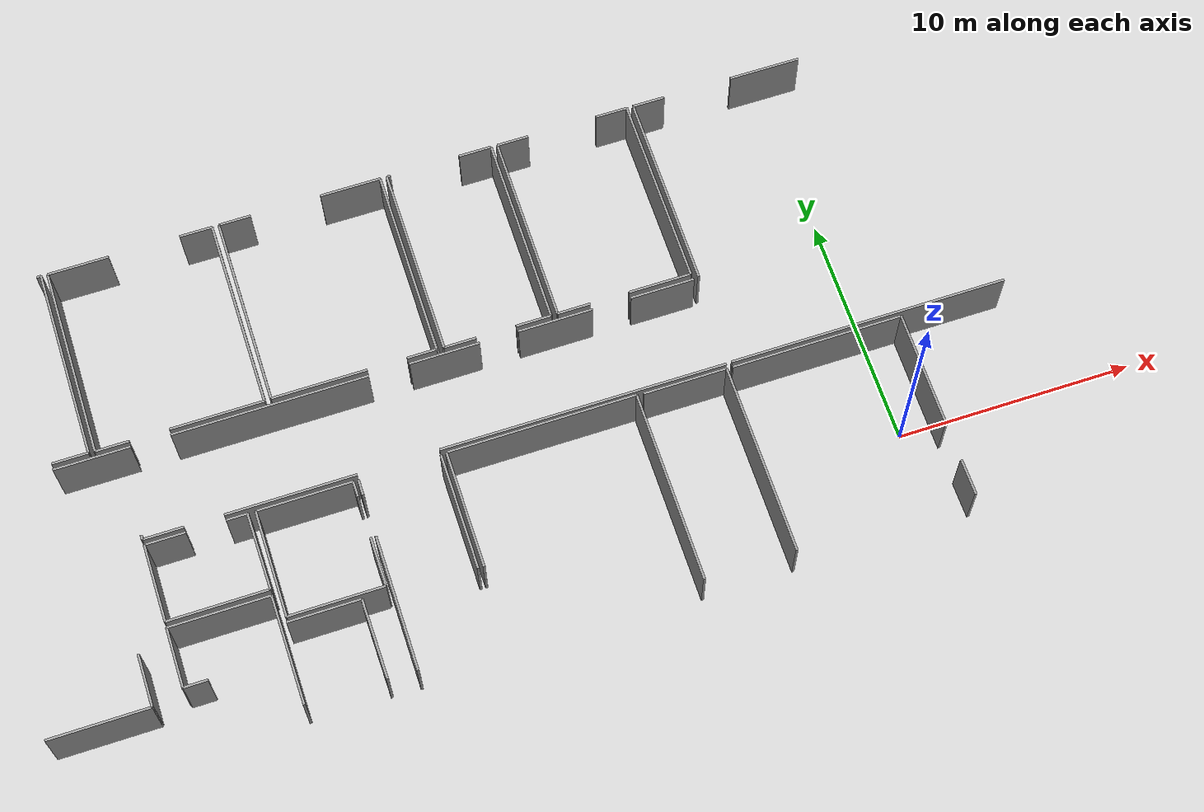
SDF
<sdf version="1.6">
 <world name="default">
  <model name="ground_plane">
   <static>1</static>
   <link name="link">
    <collision name="collision">
     <geometry><plane><normal>0 0 1</normal><size>100 100</size></plane></geometry>
     <surface><friction><ode><mu>100</mu><mu2>50</mu2></ode></friction></surface>
    </collision>
    <visual name="visual">
     <cast_shadows>0</cast_shadows>
     <geometry><plane><normal>0 0 1</normal><size>100 100</size></plane></geometry>
     <material>
      <script><uri>file://media/materials/scripts/gazebo.material</uri><name>Gazebo/Grey</name></script>
     </material>
    </visual>
   </link>
  </model>
  <model name="50041171">
   <static>1</static>
   <link name="Wall_0">
    <collision name="Wall_0_Collision">
     <geometry><box><size>2.7097945375 0.1 2.5</size></box></geometry>
     <pose>1.35489726875 0 1.25 0 0 0</pose>
    </collision>
    <visual name="Wall_0_Visual">
     <pose>1.35489726875 0 1.25 0 0 0</pose>
     <geometry><box><size>2.7097945375 0.1 2.5</size></box></geometry>
     <material>
      <script><uri>file://media/materials/scripts/gazebo.material</uri><name>Gazebo/Grey</name></script>
      <ambient>1 1 1 1</ambient>
     </material>
    </visual>
    <pose>59.5393120783 -8.49105346341 0 0 0 3.14159265359</pose>
   </link>
   <link name="Wall_1">
    <collision name="Wall_1_Collision">
     <geometry><box><size>3.16096149086 0.1 2.5</size></box></geometry>
     <pose>1.58048074543 0 1.25 0 0 0</pose>
    </collision>
    <visual name="Wall_1_Visual">
     <pose>1.58048074543 0 1.25 0 0 0</pose>
     <geometry><box><size>3.16096149086 0.1 2.5</size></box></geometry>
     <material>
      <script><uri>file://media/materials/scripts/gazebo.material</uri><name>Gazebo/Grey</name></script>
      <ambient>1 1 1 1</ambient>
     </material>
    </visual>
    <pose>55.1907684691 -8.49105346341 0 0 0 3.14159265359</pose>
   </link>
   <link name="Wall_2">
    <collision name="Wall_2_Collision">
     <geometry><box><size>2.95302354218 0.1 2.5</size></box></geometry>
     <pose>1.47651177109 0 1.25 0 0 0</pose>
    </collision>
    <visual name="Wall_2_Visual">
     <pose>1.47651177109 0 1.25 0 0 0</pose>
     <geometry><box><size>2.95302354218 0.1 2.5</size></box></geometry>
     <material>
      <script><uri>file://media/materials/scripts/gazebo.material</uri><name>Gazebo/Grey</name></script>
      <ambient>1 1 1 1</ambient>
     </material>
    </visual>
    <pose>50.3991824662 -8.49105346341 0 0 0 3.14159265359</pose>
   </link>
   <link name="Wall_3">
    <collision name="Wall_3_Collision">
     <geometry><box><size>8.16822916336 0.1 2.5</size></box></geometry>
     <pose>4.08411458168 0 1.25 0 0 0</pose>
    </collision>
    <visual name="Wall_3_Visual">
     <pose>4.08411458168 0 1.25 0 0 0</pose>
     <geometry><box><size>8.16822916336 0.1 2.5</size></box></geometry>
     <material>
      <script><uri>file://media/materials/scripts/gazebo.material</uri><name>Gazebo/Grey</name></script>
      <ambient>1 1 1 1</ambient>
     </material>
    </visual>
    <pose>45.7487606873 -8.49105346341 0 0 0 3.14159265359</pose>
   </link>
   <link name="Wall_4">
    <collision name="Wall_4_Collision">
     <geometry><box><size>3.16096149086 0.1 2.5</size></box></geometry>
     <pose>1.58048074543 0 1.25 0 0 0</pose>
    </collision>
    <visual name="Wall_4_Visual">
     <pose>1.58048074543 0 1.25 0 0 0</pose>
     <geometry><box><size>3.16096149086 0.1 2.5</size></box></geometry>
     <material>
      <script><uri>file://media/materials/scripts/gazebo.material</uri><name>Gazebo/Grey</name></script>
      <ambient>1 1 1 1</ambient>
     </material>
    </visual>
    <pose>35.9584124103 -8.49105346341 0 0 0 3.14159265359</pose>
   </link>
   <link name="Wall_13">
    <collision name="Wall_13_Collision">
     <geometry><box><size>0.196005001682 0.1 2.5</size></box></geometry>
     <pose>0.098002500841 0 1.25 0 0 0</pose>
    </collision>
    <visual name="Wall_13_Visual">
     <pose>0.098002500841 0 1.25 0 0 0</pose>
     <geometry><box><size>0.196005001682 0.1 2.5</size></box></geometry>
     <material>
      <script><uri>file://media/materials/scripts/gazebo.material</uri><name>Gazebo/Grey</name></script>
      <ambient>1 1 1 1</ambient>
     </material>
    </visual>
    <pose>35.4451687433 -12.2558982399 0 0 0 -1.57079632679</pose>
   </link>
   <link name="Wall_14">
    <collision name="Wall_14_Collision">
     <geometry><box><size>1.67112036408 0.1 2.5</size></box></geometry>
     <pose>0.835560182041 0 1.25 0 0 0</pose>
    </collision>
    <visual name="Wall_14_Visual">
     <pose>0.835560182041 0 1.25 0 0 0</pose>
     <geometry><box><size>1.67112036408 0.1 2.5</size></box></geometry>
     <material>
      <script><uri>file://media/materials/scripts/gazebo.material</uri><name>Gazebo/Grey</name></script>
      <ambient>1 1 1 1</ambient>
     </material>
    </visual>
    <pose>35.4451687433 -12.4519032416 0 0 0 0.0</pose>
   </link>
   <link name="Wall_15">
    <collision name="Wall_15_Collision">
     <geometry><box><size>5.40740223552 0.1 2.5</size></box></geometry>
     <pose>2.70370111776 0 1.25 0 0 0</pose>
    </collision>
    <visual name="Wall_15_Visual">
     <pose>2.70370111776 0 1.25 0 0 0</pose>
     <geometry><box><size>5.40740223552 0.1 2.5</size></box></geometry>
     <material>
      <script><uri>file://media/materials/scripts/gazebo.material</uri><name>Gazebo/Grey</name></script>
      <ambient>1 1 1 1</ambient>
     </material>
    </visual>
    <pose>38.7348537262 -12.4519032416 0 0 0 0.0</pose>
   </link>
   <link name="Wall_16">
    <collision name="Wall_16_Collision">
     <geometry><box><size>12.0161724886 0.1 2.5</size></box></geometry>
     <pose>6.00808624431 0 1.25 0 0 0</pose>
    </collision>
    <visual name="Wall_16_Visual">
     <pose>6.00808624431 0 1.25 0 0 0</pose>
     <geometry><box><size>12.0161724886 0.1 2.5</size></box></geometry>
     <material>
      <script><uri>file://media/materials/scripts/gazebo.material</uri><name>Gazebo/Grey</name></script>
      <ambient>1 1 1 1</ambient>
     </material>
    </visual>
    <pose>47.5232152945 -12.4519032416 0 0 0 -0.00354971833229</pose>
   </link>
   <link name="Wall_34">
    <collision name="Wall_34_Collision">
     <geometry><box><size>1.50126628879 0.1 2.5</size></box></geometry>
     <pose>0.750633144395 0 1.25 0 0 0</pose>
    </collision>
    <visual name="Wall_34_Visual">
     <pose>0.750633144395 0 1.25 0 0 0</pose>
     <geometry><box><size>1.50126628879 0.1 2.5</size></box></geometry>
     <material>
      <script><uri>file://media/materials/scripts/gazebo.material</uri><name>Gazebo/Grey</name></script>
      <ambient>1 1 1 1</ambient>
     </material>
    </visual>
    <pose>34.3062070366 -8.22852862955 0 0 0 3.14159265359</pose>
   </link>
   <link name="Wall_38">
    <collision name="Wall_38_Collision">
     <geometry><box><size>0.190927151898 0.1 2.5</size></box></geometry>
     <pose>0.0954635759488 0 1.25 0 0 0</pose>
    </collision>
    <visual name="Wall_38_Visual">
     <pose>0.0954635759488 0 1.25 0 0 0</pose>
     <geometry><box><size>0.190927151898 0.1 2.5</size></box></geometry>
     <material>
      <script><uri>file://media/materials/scripts/gazebo.material</uri><name>Gazebo/Grey</name></script>
      <ambient>1 1 1 1</ambient>
     </material>
    </visual>
    <pose>34.0990307654 -0.00533174227373 0 0 0 0.0</pose>
   </link>
   <link name="Wall_39">
    <collision name="Wall_39_Collision">
     <geometry><box><size>8.22321294147 0.1 2.5</size></box></geometry>
     <pose>4.11160647074 0 1.25 0 0 0</pose>
    </collision>
    <visual name="Wall_39_Visual">
     <pose>4.11160647074 0 1.25 0 0 0</pose>
     <geometry><box><size>8.22321294147 0.1 2.5</size></box></geometry>
     <material>
      <script><uri>file://media/materials/scripts/gazebo.material</uri><name>Gazebo/Grey</name></script>
      <ambient>1 1 1 1</ambient>
     </material>
    </visual>
    <pose>34.2899579173 -0.00533174227373 0 0 0 -1.56882031936</pose>
   </link>
   <link name="Wall_40">
    <collision name="Wall_40_Collision">
     <geometry><box><size>3.90270839813 0.1 2.5</size></box></geometry>
     <pose>1.95135419906 0 1.25 0 0 0</pose>
    </collision>
    <visual name="Wall_40_Visual">
     <pose>1.95135419906 0 1.25 0 0 0</pose>
     <geometry><box><size>3.90270839813 0.1 2.5</size></box></geometry>
     <material>
      <script><uri>file://media/materials/scripts/gazebo.material</uri><name>Gazebo/Grey</name></script>
      <ambient>1 1 1 1</ambient>
     </material>
    </visual>
    <pose>41.4958076003 -8.24782445873 0 0 0 3.14159265359</pose>
   </link>
   <link name="Wall_41">
    <collision name="Wall_41_Collision">
     <geometry><box><size>1.40224821799 0.1 2.5</size></box></geometry>
     <pose>0.701124108996 0 1.25 0 0 0</pose>
    </collision>
    <visual name="Wall_41_Visual">
     <pose>0.701124108996 0 1.25 0 0 0</pose>
     <geometry><box><size>1.40224821799 0.1 2.5</size></box></geometry>
     <material>
      <script><uri>file://media/materials/scripts/gazebo.material</uri><name>Gazebo/Grey</name></script>
      <ambient>1 1 1 1</ambient>
     </material>
    </visual>
    <pose>35.9622207976 -8.24782445873 0 0 0 3.14159265359</pose>
   </link>
   <link name="Wall_42">
    <collision name="Wall_42_Collision">
     <geometry><box><size>8.22929030702 0.1 2.5</size></box></geometry>
     <pose>4.11464515351 0 1.25 0 0 0</pose>
    </collision>
    <visual name="Wall_42_Visual">
     <pose>4.11464515351 0 1.25 0 0 0</pose>
     <geometry><box><size>8.22929030702 0.1 2.5</size></box></geometry>
     <material>
      <script><uri>file://media/materials/scripts/gazebo.material</uri><name>Gazebo/Grey</name></script>
      <ambient>1 1 1 1</ambient>
     </material>
    </visual>
    <pose>34.5599725796 -8.24782445873 0 0 0 1.57079632679</pose>
   </link>
   <link name="Wall_43">
    <collision name="Wall_43_Collision">
     <geometry><box><size>2.55707820523 0.1 2.5</size></box></geometry>
     <pose>1.27853910262 0 1.25 0 0 0</pose>
    </collision>
    <visual name="Wall_43_Visual">
     <pose>1.27853910262 0 1.25 0 0 0</pose>
     <geometry><box><size>2.55707820523 0.1 2.5</size></box></geometry>
     <material>
      <script><uri>file://media/materials/scripts/gazebo.material</uri><name>Gazebo/Grey</name></script>
      <ambient>1 1 1 1</ambient>
     </material>
    </visual>
    <pose>34.5599725796 -0.0185341517135 0 0 0 0.0</pose>
   </link>
   <link name="Wall_44">
    <collision name="Wall_44_Collision">
     <geometry><box><size>1.37762064654 0.1 2.5</size></box></geometry>
     <pose>0.688810323269 0 1.25 0 0 0</pose>
    </collision>
    <visual name="Wall_44_Visual">
     <pose>0.688810323269 0 1.25 0 0 0</pose>
     <geometry><box><size>1.37762064654 0.1 2.5</size></box></geometry>
     <material>
      <script><uri>file://media/materials/scripts/gazebo.material</uri><name>Gazebo/Grey</name></script>
      <ambient>1 1 1 1</ambient>
     </material>
    </visual>
    <pose>40.1080312542 -0.0185341517135 0 0 0 0.0</pose>
   </link>
   <link name="Wall_45">
    <collision name="Wall_45_Collision">
     <geometry><box><size>8.22929657355 0.1 2.5</size></box></geometry>
     <pose>4.11464828677 0 1.25 0 0 0</pose>
    </collision>
    <visual name="Wall_45_Visual">
     <pose>4.11464828677 0 1.25 0 0 0</pose>
     <geometry><box><size>8.22929657355 0.1 2.5</size></box></geometry>
     <material>
      <script><uri>file://media/materials/scripts/gazebo.material</uri><name>Gazebo/Grey</name></script>
      <ambient>1 1 1 1</ambient>
     </material>
    </visual>
    <pose>41.4856519007 -0.0185341517135 0 0 0 -1.56956223564</pose>
   </link>
   <link name="Wall_46">
    <collision name="Wall_46_Collision">
     <geometry><box><size>1.24381930472 0.1 2.5</size></box></geometry>
     <pose>0.621909652358 0 1.25 0 0 0</pose>
    </collision>
    <visual name="Wall_46_Visual">
     <pose>0.621909652358 0 1.25 0 0 0</pose>
     <geometry><box><size>1.24381930472 0.1 2.5</size></box></geometry>
     <material>
      <script><uri>file://media/materials/scripts/gazebo.material</uri><name>Gazebo/Grey</name></script>
      <ambient>1 1 1 1</ambient>
     </material>
    </visual>
    <pose>48.6746177331 -8.22395856475 0 0 0 3.14159265359</pose>
   </link>
   <link name="Wall_47">
    <collision name="Wall_47_Collision">
     <geometry><box><size>3.99817197408 0.1 2.5</size></box></geometry>
     <pose>1.99908598704 0 1.25 0 0 0</pose>
    </collision>
    <visual name="Wall_47_Visual">
     <pose>1.99908598704 0 1.25 0 0 0</pose>
     <geometry><box><size>3.99817197408 0.1 2.5</size></box></geometry>
     <material>
      <script><uri>file://media/materials/scripts/gazebo.material</uri><name>Gazebo/Grey</name></script>
      <ambient>1 1 1 1</ambient>
     </material>
    </visual>
    <pose>45.7698337639 -8.22395856475 0 0 0 3.14159265359</pose>
   </link>
   <link name="Wall_48">
    <collision name="Wall_48_Collision">
     <geometry><box><size>8.21773819876 0.1 2.5</size></box></geometry>
     <pose>4.10886909938 0 1.25 0 0 0</pose>
    </collision>
    <visual name="Wall_48_Visual">
     <pose>4.10886909938 0 1.25 0 0 0</pose>
     <geometry><box><size>8.21773819876 0.1 2.5</size></box></geometry>
     <material>
      <script><uri>file://media/materials/scripts/gazebo.material</uri><name>Gazebo/Grey</name></script>
      <ambient>1 1 1 1</ambient>
     </material>
    </visual>
    <pose>41.7716617898 -8.22395856475 0 0 0 1.57079632679</pose>
   </link>
   <link name="Wall_49">
    <collision name="Wall_49_Collision">
     <geometry><box><size>1.35654756993 0.1 2.5</size></box></geometry>
     <pose>0.678273784966 0 1.25 0 0 0</pose>
    </collision>
    <visual name="Wall_49_Visual">
     <pose>0.678273784966 0 1.25 0 0 0</pose>
     <geometry><box><size>1.35654756993 0.1 2.5</size></box></geometry>
     <material>
      <script><uri>file://media/materials/scripts/gazebo.material</uri><name>Gazebo/Grey</name></script>
      <ambient>1 1 1 1</ambient>
     </material>
    </visual>
    <pose>41.7716617898 -0.00622036598602 0 0 0 0.0</pose>
   </link>
   <link name="Wall_50">
    <collision name="Wall_50_Collision">
     <geometry><box><size>2.5814518842 0.1 2.5</size></box></geometry>
     <pose>1.2907259421 0 1.25 0 0 0</pose>
    </collision>
    <visual name="Wall_50_Visual">
     <pose>1.2907259421 0 1.25 0 0 0</pose>
     <geometry><box><size>2.5814518842 0.1 2.5</size></box></geometry>
     <material>
      <script><uri>file://media/materials/scripts/gazebo.material</uri><name>Gazebo/Grey</name></script>
      <ambient>1 1 1 1</ambient>
     </material>
    </visual>
    <pose>46.1072568821 -0.00622036598602 0 0 0 0.0</pose>
   </link>
   <link name="Wall_51">
    <collision name="Wall_51_Collision">
     <geometry><box><size>8.21775027976 0.1 2.5</size></box></geometry>
     <pose>4.10887513988 0 1.25 0 0 0</pose>
    </collision>
    <visual name="Wall_51_Visual">
     <pose>4.10887513988 0 1.25 0 0 0</pose>
     <geometry><box><size>8.21775027976 0.1 2.5</size></box></geometry>
     <material>
      <script><uri>file://media/materials/scripts/gazebo.material</uri><name>Gazebo/Grey</name></script>
      <ambient>1 1 1 1</ambient>
     </material>
    </visual>
    <pose>48.6887087663 -0.00622036598602 0 0 0 -1.57251103454</pose>
   </link>
   <link name="Wall_52">
    <collision name="Wall_52_Collision">
     <geometry><box><size>1.48984112677 0.1 2.5</size></box></geometry>
     <pose>0.744920563387 0 1.25 0 0 0</pose>
    </collision>
    <visual name="Wall_52_Visual">
     <pose>0.744920563387 0 1.25 0 0 0</pose>
     <geometry><box><size>1.48984112677 0.1 2.5</size></box></geometry>
     <material>
      <script><uri>file://media/materials/scripts/gazebo.material</uri><name>Gazebo/Grey</name></script>
      <ambient>1 1 1 1</ambient>
     </material>
    </visual>
    <pose>53.5074612655 -8.24071546903 0 0 0 3.14159265359</pose>
   </link>
   <link name="Wall_53">
    <collision name="Wall_53_Collision">
     <geometry><box><size>1.36302182841 0.1 2.5</size></box></geometry>
     <pose>0.681510914203 0 1.25 0 0 0</pose>
    </collision>
    <visual name="Wall_53_Visual">
     <pose>0.681510914203 0 1.25 0 0 0</pose>
     <geometry><box><size>1.36302182841 0.1 2.5</size></box></geometry>
     <material>
      <script><uri>file://media/materials/scripts/gazebo.material</uri><name>Gazebo/Grey</name></script>
      <ambient>1 1 1 1</ambient>
     </material>
    </visual>
    <pose>50.3364710213 -8.24071546903 0 0 0 3.14159265359</pose>
   </link>
   <link name="Wall_54">
    <collision name="Wall_54_Collision">
     <geometry><box><size>8.22890946829 0.1 2.5</size></box></geometry>
     <pose>4.11445473414 0 1.25 0 0 0</pose>
    </collision>
    <visual name="Wall_54_Visual">
     <pose>4.11445473414 0 1.25 0 0 0</pose>
     <geometry><box><size>8.22890946829 0.1 2.5</size></box></geometry>
     <material>
      <script><uri>file://media/materials/scripts/gazebo.material</uri><name>Gazebo/Grey</name></script>
      <ambient>1 1 1 1</ambient>
     </material>
    </visual>
    <pose>48.9734491929 -8.24071546903 0 0 0 1.57079632679</pose>
   </link>
   <link name="Wall_55">
    <collision name="Wall_55_Collision">
     <geometry><box><size>0.163125924327 0.1 2.5</size></box></geometry>
     <pose>0.0815629621637 0 1.25 0 0 0</pose>
    </collision>
    <visual name="Wall_55_Visual">
     <pose>0.0815629621637 0 1.25 0 0 0</pose>
     <geometry><box><size>0.163125924327 0.1 2.5</size></box></geometry>
     <material>
      <script><uri>file://media/materials/scripts/gazebo.material</uri><name>Gazebo/Grey</name></script>
      <ambient>1 1 1 1</ambient>
     </material>
    </visual>
    <pose>48.9734491929 -0.011806000749 0 0 0 0.0</pose>
   </link>
   <link name="Wall_56">
    <collision name="Wall_56_Collision">
     <geometry><box><size>1.40745301402 0.1 2.5</size></box></geometry>
     <pose>0.703726507011 0 1.25 0 0 0</pose>
    </collision>
    <visual name="Wall_56_Visual">
     <pose>0.703726507011 0 1.25 0 0 0</pose>
     <geometry><box><size>1.40745301402 0.1 2.5</size></box></geometry>
     <material>
      <script><uri>file://media/materials/scripts/gazebo.material</uri><name>Gazebo/Grey</name></script>
      <ambient>1 1 1 1</ambient>
     </material>
    </visual>
    <pose>52.1031819076 -0.011806000749 0 0 0 0.0</pose>
   </link>
   <link name="Wall_57">
    <collision name="Wall_57_Collision">
     <geometry><box><size>8.22891008028 0.1 2.5</size></box></geometry>
     <pose>4.11445504014 0 1.25 0 0 0</pose>
    </collision>
    <visual name="Wall_57_Visual">
     <pose>4.11445504014 0 1.25 0 0 0</pose>
     <geometry><box><size>8.22891008028 0.1 2.5</size></box></geometry>
     <material>
      <script><uri>file://media/materials/scripts/gazebo.material</uri><name>Gazebo/Grey</name></script>
      <ambient>1 1 1 1</ambient>
     </material>
    </visual>
    <pose>53.5106349216 -0.011806000749 0 0 0 -1.57118199831</pose>
   </link>
   <link name="Wall_58">
    <collision name="Wall_58_Collision">
     <geometry><box><size>2.65888909341 0.1 2.5</size></box></geometry>
     <pose>1.32944454671 0 1.25 0 0 0</pose>
    </collision>
    <visual name="Wall_58_Visual">
     <pose>1.32944454671 0 1.25 0 0 0</pose>
     <geometry><box><size>2.65888909341 0.1 2.5</size></box></geometry>
     <material>
      <script><uri>file://media/materials/scripts/gazebo.material</uri><name>Gazebo/Grey</name></script>
      <ambient>1 1 1 1</ambient>
     </material>
    </visual>
    <pose>59.5005934737 -8.23233701689 0 0 0 3.14159265359</pose>
   </link>
   <link name="Wall_59">
    <collision name="Wall_59_Collision">
     <geometry><box><size>1.4008518093 0.1 2.5</size></box></geometry>
     <pose>0.700425904651 0 1.25 0 0 0</pose>
    </collision>
    <visual name="Wall_59_Visual">
     <pose>0.700425904651 0 1.25 0 0 0</pose>
     <geometry><box><size>1.4008518093 0.1 2.5</size></box></geometry>
     <material>
      <script><uri>file://media/materials/scripts/gazebo.material</uri><name>Gazebo/Grey</name></script>
      <ambient>1 1 1 1</ambient>
     </material>
    </visual>
    <pose>55.181882232 -8.23233701689 0 0 0 3.14159265359</pose>
   </link>
   <link name="Wall_60">
    <collision name="Wall_60_Collision">
     <geometry><box><size>8.21342202644 0.1 2.5</size></box></geometry>
     <pose>4.10671101322 0 1.25 0 0 0</pose>
    </collision>
    <visual name="Wall_60_Visual">
     <pose>4.10671101322 0 1.25 0 0 0</pose>
     <geometry><box><size>8.21342202644 0.1 2.5</size></box></geometry>
     <material>
      <script><uri>file://media/materials/scripts/gazebo.material</uri><name>Gazebo/Grey</name></script>
      <ambient>1 1 1 1</ambient>
     </material>
    </visual>
    <pose>53.7810304227 -8.23233701689 0 0 0 1.57079632679</pose>
   </link>
   <link name="Wall_61">
    <collision name="Wall_61_Collision">
     <geometry><box><size>1.34537630041 0.1 2.5</size></box></geometry>
     <pose>0.672688150203 0 1.25 0 0 0</pose>
    </collision>
    <visual name="Wall_61_Visual">
     <pose>0.672688150203 0 1.25 0 0 0</pose>
     <geometry><box><size>1.34537630041 0.1 2.5</size></box></geometry>
     <material>
      <script><uri>file://media/materials/scripts/gazebo.material</uri><name>Gazebo/Grey</name></script>
      <ambient>1 1 1 1</ambient>
     </material>
    </visual>
    <pose>53.7810304227 -0.0189149904473 0 0 0 0.0</pose>
   </link>
   <link name="Wall_62">
    <collision name="Wall_62_Collision">
     <geometry><box><size>1.36962303313 0.1 2.5</size></box></geometry>
     <pose>0.684811516563 0 1.25 0 0 0</pose>
    </collision>
    <visual name="Wall_62_Visual">
     <pose>0.684811516563 0 1.25 0 0 0</pose>
     <geometry><box><size>1.36962303313 0.1 2.5</size></box></geometry>
     <material>
      <script><uri>file://media/materials/scripts/gazebo.material</uri><name>Gazebo/Grey</name></script>
      <ambient>1 1 1 1</ambient>
     </material>
    </visual>
    <pose>58.1116746114 -0.0189149904473 0 0 0 0.0</pose>
   </link>
   <link name="Wall_63">
    <collision name="Wall_63_Collision">
     <geometry><box><size>8.2134446923 0.1 2.5</size></box></geometry>
     <pose>4.10672234615 0 1.25 0 0 0</pose>
    </collision>
    <visual name="Wall_63_Visual">
     <pose>4.10672234615 0 1.25 0 0 0</pose>
     <geometry><box><size>8.2134446923 0.1 2.5</size></box></geometry>
     <material>
      <script><uri>file://media/materials/scripts/gazebo.material</uri><name>Gazebo/Grey</name></script>
      <ambient>1 1 1 1</ambient>
     </material>
    </visual>
    <pose>59.4812976445 -0.0189149904473 0 0 0 -1.56844702663</pose>
   </link>
   <link name="Wall_66">
    <collision name="Wall_66_Collision">
     <geometry><box><size>3.04048950472 0.1 2.5</size></box></geometry>
     <pose>1.52024475236 0 1.25 0 0 0</pose>
    </collision>
    <visual name="Wall_66_Visual">
     <pose>1.52024475236 0 1.25 0 0 0</pose>
     <geometry><box><size>3.04048950472 0.1 2.5</size></box></geometry>
     <material>
      <script><uri>file://media/materials/scripts/gazebo.material</uri><name>Gazebo/Grey</name></script>
      <ambient>1 1 1 1</ambient>
     </material>
    </visual>
    <pose>67.1485969266 -0.0185341517135 0 0 0 3.14159265359</pose>
   </link>
   <link name="Wall_67">
    <collision name="Wall_67_Collision">
     <geometry><box><size>1.37203501177 0.1 2.5</size></box></geometry>
     <pose>0.686017505887 0 1.25 0 0 0</pose>
    </collision>
    <visual name="Wall_67_Visual">
     <pose>0.686017505887 0 1.25 0 0 0</pose>
     <geometry><box><size>1.37203501177 0.1 2.5</size></box></geometry>
     <material>
      <script><uri>file://media/materials/scripts/gazebo.material</uri><name>Gazebo/Grey</name></script>
      <ambient>1 1 1 1</ambient>
     </material>
    </visual>
    <pose>61.1389617067 -0.0185341517135 0 0 0 3.14159265359</pose>
   </link>
   <link name="Wall_68">
    <collision name="Wall_68_Collision">
     <geometry><box><size>8.43075399722 0.1 2.5</size></box></geometry>
     <pose>4.21537699861 0 1.25 0 0 0</pose>
    </collision>
    <visual name="Wall_68_Visual">
     <pose>4.21537699861 0 1.25 0 0 0</pose>
     <geometry><box><size>8.43075399722 0.1 2.5</size></box></geometry>
     <material>
      <script><uri>file://media/materials/scripts/gazebo.material</uri><name>Gazebo/Grey</name></script>
      <ambient>1 1 1 1</ambient>
     </material>
    </visual>
    <pose>59.7669266949 -0.0185341517135 0 0 0 -1.57079632679</pose>
   </link>
   <link name="Wall_69">
    <collision name="Wall_69_Collision">
     <geometry><box><size>11.7745249236 0.1 2.5</size></box></geometry>
     <pose>5.88726246182 0 1.25 0 0 0</pose>
    </collision>
    <visual name="Wall_69_Visual">
     <pose>5.88726246182 0 1.25 0 0 0</pose>
     <geometry><box><size>11.7745249236 0.1 2.5</size></box></geometry>
     <material>
      <script><uri>file://media/materials/scripts/gazebo.material</uri><name>Gazebo/Grey</name></script>
      <ambient>1 1 1 1</ambient>
     </material>
    </visual>
    <pose>59.7669266949 -12.4736110494 0 0 0 -0.00107814344977</pose>
   </link>
   <link name="Wall_70">
    <collision name="Wall_70_Collision">
     <geometry><box><size>4.16866078059 0.1 2.5</size></box></geometry>
     <pose>2.0843303903 0 1.25 0 0 0</pose>
    </collision>
    <visual name="Wall_70_Visual">
     <pose>2.0843303903 0 1.25 0 0 0</pose>
     <geometry><box><size>4.16866078059 0.1 2.5</size></box></geometry>
     <material>
      <script><uri>file://media/materials/scripts/gazebo.material</uri><name>Gazebo/Grey</name></script>
      <ambient>1 1 1 1</ambient>
     </material>
    </visual>
    <pose>34.1646619739 -19.1455248275 0 0 0 3.14159265359</pose>
   </link>
   <link name="Wall_72">
    <collision name="Wall_72_Collision">
     <geometry><box><size>2.20277126944 0.1 2.5</size></box></geometry>
     <pose>1.10138563472 0 1.25 0 0 0</pose>
    </collision>
    <visual name="Wall_72_Visual">
     <pose>1.10138563472 0 1.25 0 0 0</pose>
     <geometry><box><size>2.20277126944 0.1 2.5</size></box></geometry>
     <material>
      <script><uri>file://media/materials/scripts/gazebo.material</uri><name>Gazebo/Grey</name></script>
      <ambient>1 1 1 1</ambient>
     </material>
    </visual>
    <pose>34.1642811352 -16.942753591 0 0 0 -1.57062343606</pose>
   </link>
   <link name="Wall_73">
    <collision name="Wall_73_Collision">
     <geometry><box><size>4.19011469593 0.1 2.5</size></box></geometry>
     <pose>2.09505734797 0 1.25 0 0 0</pose>
    </collision>
    <visual name="Wall_73_Visual">
     <pose>2.09505734797 0 1.25 0 0 0</pose>
     <geometry><box><size>4.19011469593 0.1 2.5</size></box></geometry>
     <material>
      <script><uri>file://media/materials/scripts/gazebo.material</uri><name>Gazebo/Grey</name></script>
      <ambient>1 1 1 1</ambient>
     </material>
    </visual>
    <pose>39.6515325585 -15.9949729287 0 0 0 3.14159265359</pose>
   </link>
   <link name="Wall_74">
    <collision name="Wall_74_Collision">
     <geometry><box><size>3.30542631723 0.1 2.5</size></box></geometry>
     <pose>1.65271315861 0 1.25 0 0 0</pose>
    </collision>
    <visual name="Wall_74_Visual">
     <pose>1.65271315861 0 1.25 0 0 0</pose>
     <geometry><box><size>3.30542631723 0.1 2.5</size></box></geometry>
     <material>
      <script><uri>file://media/materials/scripts/gazebo.material</uri><name>Gazebo/Grey</name></script>
      <ambient>1 1 1 1</ambient>
     </material>
    </visual>
    <pose>35.4614178626 -15.9949729287 0 0 0 1.57079632679</pose>
   </link>
   <link name="Wall_75">
    <collision name="Wall_75_Collision">
     <geometry><box><size>1.66934311666 0.1 2.5</size></box></geometry>
     <pose>0.834671558329 0 1.25 0 0 0</pose>
    </collision>
    <visual name="Wall_75_Visual">
     <pose>0.834671558329 0 1.25 0 0 0</pose>
     <geometry><box><size>1.66934311666 0.1 2.5</size></box></geometry>
     <material>
      <script><uri>file://media/materials/scripts/gazebo.material</uri><name>Gazebo/Grey</name></script>
      <ambient>1 1 1 1</ambient>
     </material>
    </visual>
    <pose>35.4614178626 -12.6895466115 0 0 0 0.0</pose>
   </link>
   <link name="Wall_76">
    <collision name="Wall_76_Collision">
     <geometry><box><size>0.870978184288 0.1 2.5</size></box></geometry>
     <pose>0.435489092144 0 1.25 0 0 0</pose>
    </collision>
    <visual name="Wall_76_Visual">
     <pose>0.435489092144 0 1.25 0 0 0</pose>
     <geometry><box><size>0.870978184288 0.1 2.5</size></box></geometry>
     <material>
      <script><uri>file://media/materials/scripts/gazebo.material</uri><name>Gazebo/Grey</name></script>
      <ambient>1 1 1 1</ambient>
     </material>
    </visual>
    <pose>38.7420896621 -12.6895466115 0 0 0 0.0</pose>
   </link>
   <link name="Wall_77">
    <collision name="Wall_77_Collision">
     <geometry><box><size>3.30565011347 0.1 2.5</size></box></geometry>
     <pose>1.65282505674 0 1.25 0 0 0</pose>
    </collision>
    <visual name="Wall_77_Visual">
     <pose>1.65282505674 0 1.25 0 0 0</pose>
     <geometry><box><size>3.30565011347 0.1 2.5</size></box></geometry>
     <material>
      <script><uri>file://media/materials/scripts/gazebo.material</uri><name>Gazebo/Grey</name></script>
      <ambient>1 1 1 1</ambient>
     </material>
    </visual>
    <pose>39.6130678464 -12.6895466115 0 0 0 -1.55916001356</pose>
   </link>
   <link name="Wall_132">
    <collision name="Wall_132_Collision">
     <geometry><box><size>0.992592686627 0.1 2.5</size></box></geometry>
     <pose>0.496296343313 0 1.25 0 0 0</pose>
    </collision>
    <visual name="Wall_132_Visual">
     <pose>0.496296343313 0 1.25 0 0 0</pose>
     <geometry><box><size>0.992592686627 0.1 2.5</size></box></geometry>
     <material>
      <script><uri>file://media/materials/scripts/gazebo.material</uri><name>Gazebo/Grey</name></script>
      <ambient>1 1 1 1</ambient>
     </material>
    </visual>
    <pose>36.4467746133 -18.7682405885 0 0 0 3.14159265359</pose>
   </link>
   <link name="Wall_133">
    <collision name="Wall_133_Collision">
     <geometry><box><size>2.52039074054 0.1 2.5</size></box></geometry>
     <pose>1.26019537027 0 1.25 0 0 0</pose>
    </collision>
    <visual name="Wall_133_Visual">
     <pose>1.26019537027 0 1.25 0 0 0</pose>
     <geometry><box><size>2.52039074054 0.1 2.5</size></box></geometry>
     <material>
      <script><uri>file://media/materials/scripts/gazebo.material</uri><name>Gazebo/Grey</name></script>
      <ambient>1 1 1 1</ambient>
     </material>
    </visual>
    <pose>35.4541819267 -18.7682405885 0 0 0 1.57079632679</pose>
   </link>
   <link name="Wall_134">
    <collision name="Wall_134_Collision">
     <geometry><box><size>4.1661218557 0.1 2.5</size></box></geometry>
     <pose>2.08306092785 0 1.25 0 0 0</pose>
    </collision>
    <visual name="Wall_134_Visual">
     <pose>2.08306092785 0 1.25 0 0 0</pose>
     <geometry><box><size>4.1661218557 0.1 2.5</size></box></geometry>
     <material>
      <script><uri>file://media/materials/scripts/gazebo.material</uri><name>Gazebo/Grey</name></script>
      <ambient>1 1 1 1</ambient>
     </material>
    </visual>
    <pose>35.4541819267 -16.247849848 0 0 0 0.0</pose>
   </link>
   <link name="Wall_135">
    <collision name="Wall_135_Collision">
     <geometry><box><size>4.61308710982 0.1 2.5</size></box></geometry>
     <pose>2.30654355491 0 1.25 0 0 0</pose>
    </collision>
    <visual name="Wall_135_Visual">
     <pose>2.30654355491 0 1.25 0 0 0</pose>
     <geometry><box><size>4.61308710982 0.1 2.5</size></box></geometry>
     <material>
      <script><uri>file://media/materials/scripts/gazebo.material</uri><name>Gazebo/Grey</name></script>
      <ambient>1 1 1 1</ambient>
     </material>
    </visual>
    <pose>39.6203037824 -16.247849848 0 0 0 -1.56375147664</pose>
   </link>
   <link name="Wall_139">
    <collision name="Wall_139_Collision">
     <geometry><box><size>3.02208229925 0.1 2.5</size></box></geometry>
     <pose>1.51104114963 0 1.25 0 0 0</pose>
    </collision>
    <visual name="Wall_139_Visual">
     <pose>1.51104114963 0 1.25 0 0 0</pose>
     <geometry><box><size>3.02208229925 0.1 2.5</size></box></geometry>
     <material>
      <script><uri>file://media/materials/scripts/gazebo.material</uri><name>Gazebo/Grey</name></script>
      <ambient>1 1 1 1</ambient>
     </material>
    </visual>
    <pose>39.8716573467 -17.4785936895 0 0 0 0.0</pose>
   </link>
   <link name="Wall_140">
    <collision name="Wall_140_Collision">
     <geometry><box><size>3.38572406923 0.1 2.5</size></box></geometry>
     <pose>1.69286203461 0 1.25 0 0 0</pose>
    </collision>
    <visual name="Wall_140_Visual">
     <pose>1.69286203461 0 1.25 0 0 0</pose>
     <geometry><box><size>3.38572406923 0.1 2.5</size></box></geometry>
     <material>
      <script><uri>file://media/materials/scripts/gazebo.material</uri><name>Gazebo/Grey</name></script>
      <ambient>1 1 1 1</ambient>
     </material>
    </visual>
    <pose>42.8937396459 -17.4785936895 0 0 0 -1.56007267623</pose>
   </link>
   <link name="Wall_141">
    <collision name="Wall_141_Collision">
     <geometry><box><size>3.9834462097 0.1 2.5</size></box></geometry>
     <pose>1.99172310485 0 1.25 0 0 0</pose>
    </collision>
    <visual name="Wall_141_Visual">
     <pose>1.99172310485 0 1.25 0 0 0</pose>
     <geometry><box><size>3.9834462097 0.1 2.5</size></box></geometry>
     <material>
      <script><uri>file://media/materials/scripts/gazebo.material</uri><name>Gazebo/Grey</name></script>
      <ambient>1 1 1 1</ambient>
     </material>
    </visual>
    <pose>43.9242892597 -17.2611347725 0 0 0 3.14159265359</pose>
   </link>
   <link name="Wall_142">
    <collision name="Wall_142_Collision">
     <geometry><box><size>4.57704684951 0.1 2.5</size></box></geometry>
     <pose>2.28852342476 0 1.25 0 0 0</pose>
    </collision>
    <visual name="Wall_142_Visual">
     <pose>2.28852342476 0 1.25 0 0 0</pose>
     <geometry><box><size>4.57704684951 0.1 2.5</size></box></geometry>
     <material>
      <script><uri>file://media/materials/scripts/gazebo.material</uri><name>Gazebo/Grey</name></script>
      <ambient>1 1 1 1</ambient>
     </material>
    </visual>
    <pose>39.94084305 -17.2611347725 0 0 0 1.57079632679</pose>
   </link>
   <link name="Wall_143">
    <collision name="Wall_143_Collision">
     <geometry><box><size>3.970624639 0.1 2.5</size></box></geometry>
     <pose>1.9853123195 0 1.25 0 0 0</pose>
    </collision>
    <visual name="Wall_143_Visual">
     <pose>1.9853123195 0 1.25 0 0 0</pose>
     <geometry><box><size>3.970624639 0.1 2.5</size></box></geometry>
     <material>
      <script><uri>file://media/materials/scripts/gazebo.material</uri><name>Gazebo/Grey</name></script>
      <ambient>1 1 1 1</ambient>
     </material>
    </visual>
    <pose>39.94084305 -12.684087923 0 0 0 0.0</pose>
   </link>
   <link name="Wall_144">
    <collision name="Wall_144_Collision">
     <geometry><box><size>0.68030492488 0.1 2.5</size></box></geometry>
     <pose>0.34015246244 0 1.25 0 0 0</pose>
    </collision>
    <visual name="Wall_144_Visual">
     <pose>0.34015246244 0 1.25 0 0 0</pose>
     <geometry><box><size>0.68030492488 0.1 2.5</size></box></geometry>
     <material>
      <script><uri>file://media/materials/scripts/gazebo.material</uri><name>Gazebo/Grey</name></script>
      <ambient>1 1 1 1</ambient>
     </material>
    </visual>
    <pose>43.911467689 -12.684087923 0 0 0 -1.57079632679</pose>
   </link>
   <link name="Wall_145">
    <collision name="Wall_145_Collision">
     <geometry><box><size>2.10925082405 0.1 2.5</size></box></geometry>
     <pose>1.05462541202 0 1.25 0 0 0</pose>
    </collision>
    <visual name="Wall_145_Visual">
     <pose>1.05462541202 0 1.25 0 0 0</pose>
     <geometry><box><size>2.10925082405 0.1 2.5</size></box></geometry>
     <material>
      <script><uri>file://media/materials/scripts/gazebo.material</uri><name>Gazebo/Grey</name></script>
      <ambient>1 1 1 1</ambient>
     </material>
    </visual>
    <pose>43.911467689 -15.1519229182 0 0 0 -1.56471755725</pose>
   </link>
   <link name="Wall_148">
    <collision name="Wall_148_Collision">
     <geometry><box><size>5.00802934997 0.1 2.5</size></box></geometry>
     <pose>2.50401467499 0 1.25 0 0 0</pose>
    </collision>
    <visual name="Wall_148_Visual">
     <pose>2.50401467499 0 1.25 0 0 0</pose>
     <geometry><box><size>5.00802934997 0.1 2.5</size></box></geometry>
     <material>
      <script><uri>file://media/materials/scripts/gazebo.material</uri><name>Gazebo/Grey</name></script>
      <ambient>1 1 1 1</ambient>
     </material>
    </visual>
    <pose>47.517248821 -17.6893244556 0 0 0 1.57079632679</pose>
   </link>
   <link name="Wall_149">
    <collision name="Wall_149_Collision">
     <geometry><box><size>0.667737246663 0.1 2.5</size></box></geometry>
     <pose>0.333868623331 0 1.25 0 0 0</pose>
    </collision>
    <visual name="Wall_149_Visual">
     <pose>0.333868623331 0 1.25 0 0 0</pose>
     <geometry><box><size>0.667737246663 0.1 2.5</size></box></geometry>
     <material>
      <script><uri>file://media/materials/scripts/gazebo.material</uri><name>Gazebo/Grey</name></script>
      <ambient>1 1 1 1</ambient>
     </material>
    </visual>
    <pose>44.1210559389 -12.6812951056 0 0 0 -1.57079632679</pose>
   </link>
   <link name="Wall_150">
    <collision name="Wall_150_Collision">
     <geometry><box><size>5.74052080501 0.1 2.5</size></box></geometry>
     <pose>2.87026040251 0 1.25 0 0 0</pose>
    </collision>
    <visual name="Wall_150_Visual">
     <pose>2.87026040251 0 1.25 0 0 0</pose>
     <geometry><box><size>5.74052080501 0.1 2.5</size></box></geometry>
     <material>
      <script><uri>file://media/materials/scripts/gazebo.material</uri><name>Gazebo/Grey</name></script>
      <ambient>1 1 1 1</ambient>
     </material>
    </visual>
    <pose>44.1210559389 -15.1601744241 0 0 0 -1.56878394561</pose>
   </link>
   <link name="Wall_155">
    <collision name="Wall_155_Collision">
     <geometry><box><size>5.04446292218 0.1 2.5</size></box></geometry>
     <pose>2.52223146109 0 1.25 0 0 0</pose>
    </collision>
    <visual name="Wall_155_Visual">
     <pose>2.52223146109 0 1.25 0 0 0</pose>
     <geometry><box><size>5.04446292218 0.1 2.5</size></box></geometry>
     <material>
      <script><uri>file://media/materials/scripts/gazebo.material</uri><name>Gazebo/Grey</name></script>
      <ambient>1 1 1 1</ambient>
     </material>
    </visual>
    <pose>47.7532418897 -17.6922442192 0 0 0 1.57079632679</pose>
   </link>
   <link name="Wall_156">
    <collision name="Wall_156_Collision">
     <geometry><box><size>7.9327438796 0.1 2.5</size></box></geometry>
     <pose>3.9663719398 0 1.25 0 0 0</pose>
    </collision>
    <visual name="Wall_156_Visual">
     <pose>3.9663719398 0 1.25 0 0 0</pose>
     <geometry><box><size>7.9327438796 0.1 2.5</size></box></geometry>
     <material>
      <script><uri>file://media/materials/scripts/gazebo.material</uri><name>Gazebo/Grey</name></script>
      <ambient>1 1 1 1</ambient>
     </material>
    </visual>
    <pose>47.7532418897 -12.647781297 0 0 0 0.0</pose>
   </link>
   <link name="Wall_157">
    <collision name="Wall_157_Collision">
     <geometry><box><size>8.21305726176 0.1 2.5</size></box></geometry>
     <pose>4.10652863088 0 1.25 0 0 0</pose>
    </collision>
    <visual name="Wall_157_Visual">
     <pose>4.10652863088 0 1.25 0 0 0</pose>
     <geometry><box><size>8.21305726176 0.1 2.5</size></box></geometry>
     <material>
      <script><uri>file://media/materials/scripts/gazebo.material</uri><name>Gazebo/Grey</name></script>
      <ambient>1 1 1 1</ambient>
     </material>
    </visual>
    <pose>55.6859857693 -12.647781297 0 0 0 -1.56881787597</pose>
   </link>
   <link name="Wall_161">
    <collision name="Wall_161_Collision">
     <geometry><box><size>3.51971157813 0.1 2.5</size></box></geometry>
     <pose>1.75985578907 0 1.25 0 0 0</pose>
    </collision>
    <visual name="Wall_161_Visual">
     <pose>1.75985578907 0 1.25 0 0 0</pose>
     <geometry><box><size>3.51971157813 0.1 2.5</size></box></geometry>
     <material>
      <script><uri>file://media/materials/scripts/gazebo.material</uri><name>Gazebo/Grey</name></script>
      <ambient>1 1 1 1</ambient>
     </material>
    </visual>
    <pose>55.9662830774 -12.6877693641 0 0 0 0.0</pose>
   </link>
   <link name="Wall_162">
    <collision name="Wall_162_Collision">
     <geometry><box><size>8.17638287755 0.1 2.5</size></box></geometry>
     <pose>4.08819143878 0 1.25 0 0 0</pose>
    </collision>
    <visual name="Wall_162_Visual">
     <pose>4.08819143878 0 1.25 0 0 0</pose>
     <geometry><box><size>8.17638287755 0.1 2.5</size></box></geometry>
     <material>
      <script><uri>file://media/materials/scripts/gazebo.material</uri><name>Gazebo/Grey</name></script>
      <ambient>1 1 1 1</ambient>
     </material>
    </visual>
    <pose>59.4859946556 -12.6877693641 0 0 0 -1.56812585743</pose>
   </link>
   <link name="Wall_166">
    <collision name="Wall_166_Collision">
     <geometry><box><size>7.22768443703 0.1 2.5</size></box></geometry>
     <pose>3.61384221851 0 1.25 0 0 0</pose>
    </collision>
    <visual name="Wall_166_Visual">
     <pose>3.61384221851 0 1.25 0 0 0</pose>
     <geometry><box><size>7.22768443703 0.1 2.5</size></box></geometry>
     <material>
      <script><uri>file://media/materials/scripts/gazebo.material</uri><name>Gazebo/Grey</name></script>
      <ambient>1 1 1 1</ambient>
     </material>
    </visual>
    <pose>59.741537446 -12.6986867411 0 0 0 0.0</pose>
   </link>
   <link name="Wall_167">
    <collision name="Wall_167_Collision">
     <geometry><box><size>5.01361498473 0.1 2.5</size></box></geometry>
     <pose>2.50680749237 0 1.25 0 0 0</pose>
    </collision>
    <visual name="Wall_167_Visual">
     <pose>2.50680749237 0 1.25 0 0 0</pose>
     <geometry><box><size>5.01361498473 0.1 2.5</size></box></geometry>
     <material>
      <script><uri>file://media/materials/scripts/gazebo.material</uri><name>Gazebo/Grey</name></script>
      <ambient>1 1 1 1</ambient>
     </material>
    </visual>
    <pose>66.969221883 -12.6986867411 0 0 0 -1.57079632679</pose>
   </link>
   <link name="Wall_168">
    <collision name="Wall_168_Collision">
     <geometry><box><size>1.52632035903 0.1 2.5</size></box></geometry>
     <pose>0.763160179516 0 1.25 0 0 0</pose>
    </collision>
    <visual name="Wall_168_Visual">
     <pose>0.763160179516 0 1.25 0 0 0</pose>
     <geometry><box><size>1.52632035903 0.1 2.5</size></box></geometry>
     <material>
      <script><uri>file://media/materials/scripts/gazebo.material</uri><name>Gazebo/Grey</name></script>
      <ambient>1 1 1 1</ambient>
     </material>
    </visual>
    <pose>66.969221883 -19.3345477857 0 0 0 -1.56306130681</pose>
   </link>
   <pose>-65.65 16.7602709033 0 0 0 0</pose>
  </model>
 </world>
</sdf>
